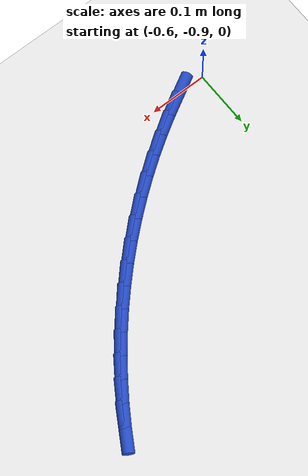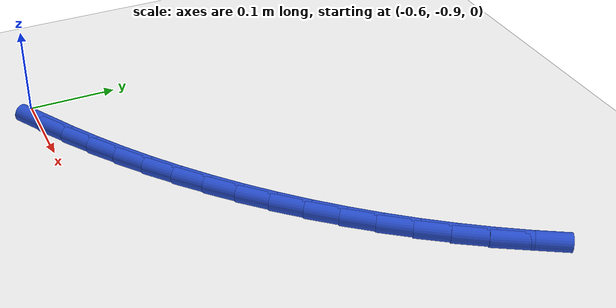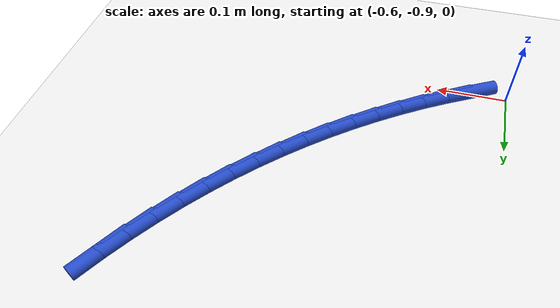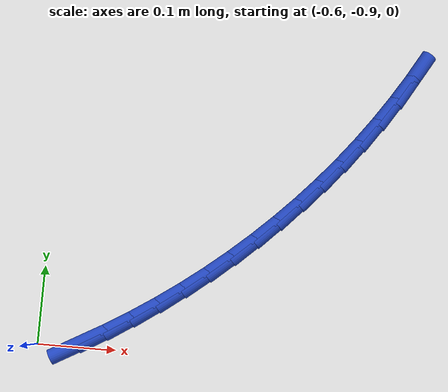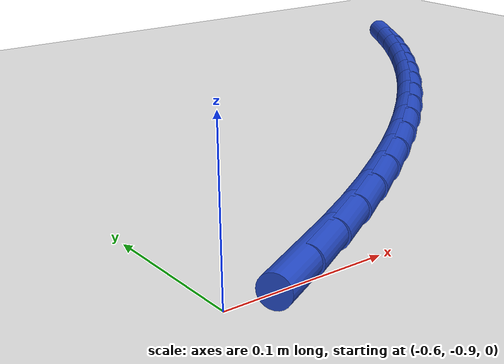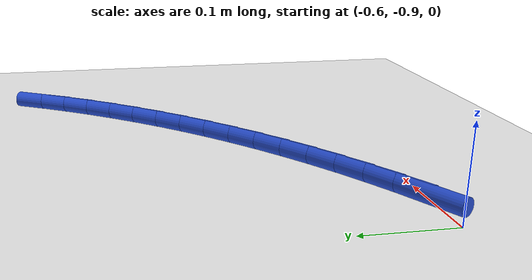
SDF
<sdf version="1.6">
 <world name="default">
  <model name="ground_plane">
   <static>1</static>
   <link name="link">
    <collision name="collision">
     <geometry><plane><normal>0 0 1</normal><size>100 100</size></plane></geometry>
     <surface><friction><ode><mu>100</mu><mu2>50</mu2></ode></friction></surface>
    </collision>
    <visual name="visual">
     <cast_shadows>0</cast_shadows>
     <geometry><plane><normal>0 0 1</normal><size>100 100</size></plane></geometry>
     <material>
      <script><uri>file://media/materials/scripts/gazebo.material</uri><name>Gazebo/WhiteGlow</name></script>
     </material>
    </visual>
   </link>
  </model>
  <model name="line">
   <link name="link_150">
    <pose>-0.5456580908907839 -0.8952278117174453 0.01 0 1.57 0.5089579361997251</pose>
    <collision name="collision">
     <geometry><cylinder><radius>0.01</radius><length>0.08</length></cylinder></geometry>
    </collision>
    <visual name="visual">
     <material>
      <script><name>Gazebo/Blue</name><uri>file://media/materials/scripts/gazebo.material</uri></script>
     </material>
     <geometry><cylinder><radius>0.01</radius><length>0.08</length></cylinder></geometry>
    </visual>
   </link>
   <link name="link_151">
    <pose>-0.5135934730169082 -0.8773360305343423 0.01 0 1.57 0.5435496370707822</pose>
    <collision name="collision">
     <geometry><cylinder><radius>0.01</radius><length>0.08</length></cylinder></geometry>
    </collision>
    <visual name="visual">
     <material>
      <script><name>Gazebo/Blue</name><uri>file://media/materials/scripts/gazebo.material</uri></script>
     </material>
     <geometry><cylinder><radius>0.01</radius><length>0.08</length></cylinder></geometry>
    </visual>
   </link>
   <link name="link_152">
    <pose>-0.4820897448052876 -0.8582994298909954 0.01 0 1.57 0.5779566497278354</pose>
    <collision name="collision">
     <geometry><cylinder><radius>0.01</radius><length>0.08</length></cylinder></geometry>
    </collision>
    <visual name="visual">
     <material>
      <script><name>Gazebo/Blue</name><uri>file://media/materials/scripts/gazebo.material</uri></script>
     </material>
     <geometry><cylinder><radius>0.01</radius><length>0.08</length></cylinder></geometry>
    </visual>
   </link>
   <link name="link_153">
    <pose>-0.45119854473894816 -0.8381505859662784 0.01 0 1.57 0.6122693711136546</pose>
    <collision name="collision">
     <geometry><cylinder><radius>0.01</radius><length>0.08</length></cylinder></geometry>
    </collision>
    <visual name="visual">
     <material>
      <script><name>Gazebo/Blue</name><uri>file://media/materials/scripts/gazebo.material</uri></script>
     </material>
     <geometry><cylinder><radius>0.01</radius><length>0.08</length></cylinder></geometry>
    </visual>
   </link>
   <link name="link_154">
    <pose>-0.4209715113009145 -0.816922074939063 0.01 0 1.57 0.6465774096562809</pose>
    <collision name="collision">
     <geometry><cylinder><radius>0.01</radius><length>0.08</length></cylinder></geometry>
    </collision>
    <visual name="visual">
     <material>
      <script><name>Gazebo/Blue</name><uri>file://media/materials/scripts/gazebo.material</uri></script>
     </material>
     <geometry><cylinder><radius>0.01</radius><length>0.08</length></cylinder></geometry>
    </visual>
   </link>
   <link name="link_155">
    <pose>-0.39146028297421365 -0.7946464729882237 0.01 0 1.57 0.6809695358788421</pose>
    <collision name="collision">
     <geometry><cylinder><radius>0.01</radius><length>0.08</length></cylinder></geometry>
    </collision>
    <visual name="visual">
     <material>
      <script><name>Gazebo/Blue</name><uri>file://media/materials/scripts/gazebo.material</uri></script>
     </material>
     <geometry><cylinder><radius>0.01</radius><length>0.08</length></cylinder></geometry>
    </visual>
   </link>
   <link name="link_156">
    <pose>-0.3627164982418706 -0.7713563562926329 0.01 0 1.57 0.715533622358164</pose>
    <collision name="collision">
     <geometry><cylinder><radius>0.01</radius><length>0.08</length></cylinder></geometry>
    </collision>
    <visual name="visual">
     <material>
      <script><name>Gazebo/Blue</name><uri>file://media/materials/scripts/gazebo.material</uri></script>
     </material>
     <geometry><cylinder><radius>0.01</radius><length>0.08</length></cylinder></geometry>
    </visual>
   </link>
   <link name="link_157">
    <pose>-0.3347917955869109 -0.7470843010311633 0.01 0 1.57 0.7503565507820324</pose>
    <collision name="collision">
     <geometry><cylinder><radius>0.01</radius><length>0.08</length></cylinder></geometry>
    </collision>
    <visual name="visual">
     <material>
      <script><name>Gazebo/Blue</name><uri>file://media/materials/scripts/gazebo.material</uri></script>
     </material>
     <geometry><cylinder><radius>0.01</radius><length>0.08</length></cylinder></geometry>
    </visual>
   </link>
   <link name="link_158">
    <pose>-0.30773781349236035 -0.7218628833826883 0.01 0 1.57 0.7855240640526835</pose>
    <collision name="collision">
     <geometry><cylinder><radius>0.01</radius><length>0.08</length></cylinder></geometry>
    </collision>
    <visual name="visual">
     <material>
      <script><name>Gazebo/Blue</name><uri>file://media/materials/scripts/gazebo.material</uri></script>
     </material>
     <geometry><cylinder><radius>0.01</radius><length>0.08</length></cylinder></geometry>
    </visual>
   </link>
   <link name="link_159">
    <pose>-0.2816061904412439 -0.6957246795260804 0.01 0 1.57 0.821120541211994</pose>
    <collision name="collision">
     <geometry><cylinder><radius>0.01</radius><length>0.08</length></cylinder></geometry>
    </collision>
    <visual name="visual">
     <material>
      <script><name>Gazebo/Blue</name><uri>file://media/materials/scripts/gazebo.material</uri></script>
     </material>
     <geometry><cylinder><radius>0.01</radius><length>0.08</length></cylinder></geometry>
    </visual>
   </link>
   <link name="link_160">
    <pose>-0.2564485649165884 -0.6687022656402135 0.01 0 1.57 0.8572286326403826</pose>
    <collision name="collision">
     <geometry><cylinder><radius>0.01</radius><length>0.08</length></cylinder></geometry>
    </collision>
    <visual name="visual">
     <material>
      <script><name>Gazebo/Blue</name><uri>file://media/materials/scripts/gazebo.material</uri></script>
     </material>
     <geometry><cylinder><radius>0.01</radius><length>0.08</length></cylinder></geometry>
    </visual>
   </link>
   <link name="link_161">
    <pose>-0.23231657379990878 -0.6408282183051165 0.01 0 1.57 0.8937795829014016</pose>
    <collision name="collision">
     <geometry><cylinder><radius>0.01</radius><length>0.08</length></cylinder></geometry>
    </collision>
    <visual name="visual">
     <material>
      <script><name>Gazebo/Blue</name><uri>file://media/materials/scripts/gazebo.material</uri></script>
     </material>
     <geometry><cylinder><radius>0.01</radius><length>0.08</length></cylinder></geometry>
    </visual>
   </link>
   <link name="link_162">
    <pose>-0.2092559848333734 -0.6121365842412394 0.01 0 1.57 0.9303487972274488</pose>
    <collision name="collision">
     <geometry><cylinder><radius>0.01</radius><length>0.08</length></cylinder></geometry>
    </collision>
    <visual name="visual">
     <material>
      <script><name>Gazebo/Blue</name><uri>file://media/materials/scripts/gazebo.material</uri></script>
     </material>
     <geometry><cylinder><radius>0.01</radius><length>0.08</length></cylinder></geometry>
    </visual>
   </link>
   <link name="link_163">
    <pose>-0.18729347884553332 -0.5826661911840197 0.01 0 1.57 0.9668770115266065</pose>
    <collision name="collision">
     <geometry><cylinder><radius>0.01</radius><length>0.08</length></cylinder></geometry>
    </collision>
    <visual name="visual">
     <material>
      <script><name>Gazebo/Blue</name><uri>file://media/materials/scripts/gazebo.material</uri></script>
     </material>
     <geometry><cylinder><radius>0.01</radius><length>0.08</length></cylinder></geometry>
    </visual>
   </link>
   <link name="link_164">
    <pose>-0.16645186326654818 -0.5524568371030646 0.01 0 1.57 1.003402767309231</pose>
    <collision name="collision">
     <geometry><cylinder><radius>0.01</radius><length>0.08</length></cylinder></geometry>
    </collision>
    <visual name="visual">
     <material>
      <script><name>Gazebo/Blue</name><uri>file://media/materials/scripts/gazebo.material</uri></script>
     </material>
     <geometry><cylinder><radius>0.01</radius><length>0.08</length></cylinder></geometry>
    </visual>
   </link>
   <link name="link_165">
    <pose>-0.14675394552657722 -0.5215483199679801 0.01 0 1.57 1.0399653876410926</pose>
    <collision name="collision">
     <geometry><cylinder><radius>0.01</radius><length>0.08</length></cylinder></geometry>
    </collision>
    <visual name="visual">
     <material>
      <script><name>Gazebo/Blue</name><uri>file://media/materials/scripts/gazebo.material</uri></script>
     </material>
     <geometry><cylinder><radius>0.01</radius><length>0.08</length></cylinder></geometry>
    </visual>
   </link>
  </model>
 </world>
</sdf>
